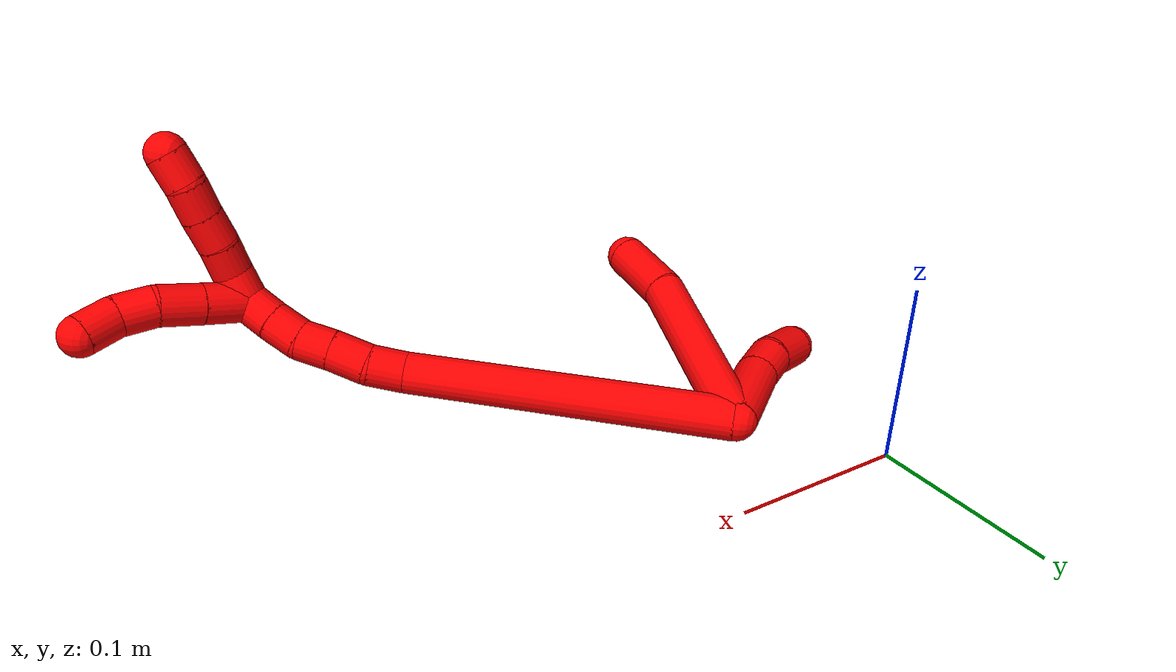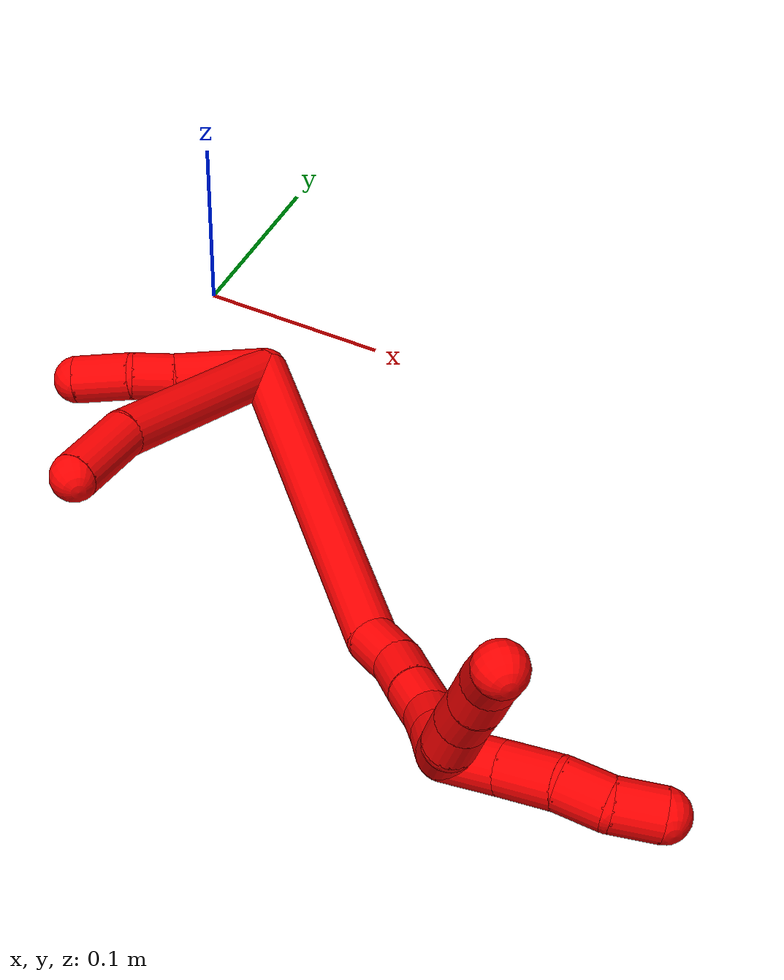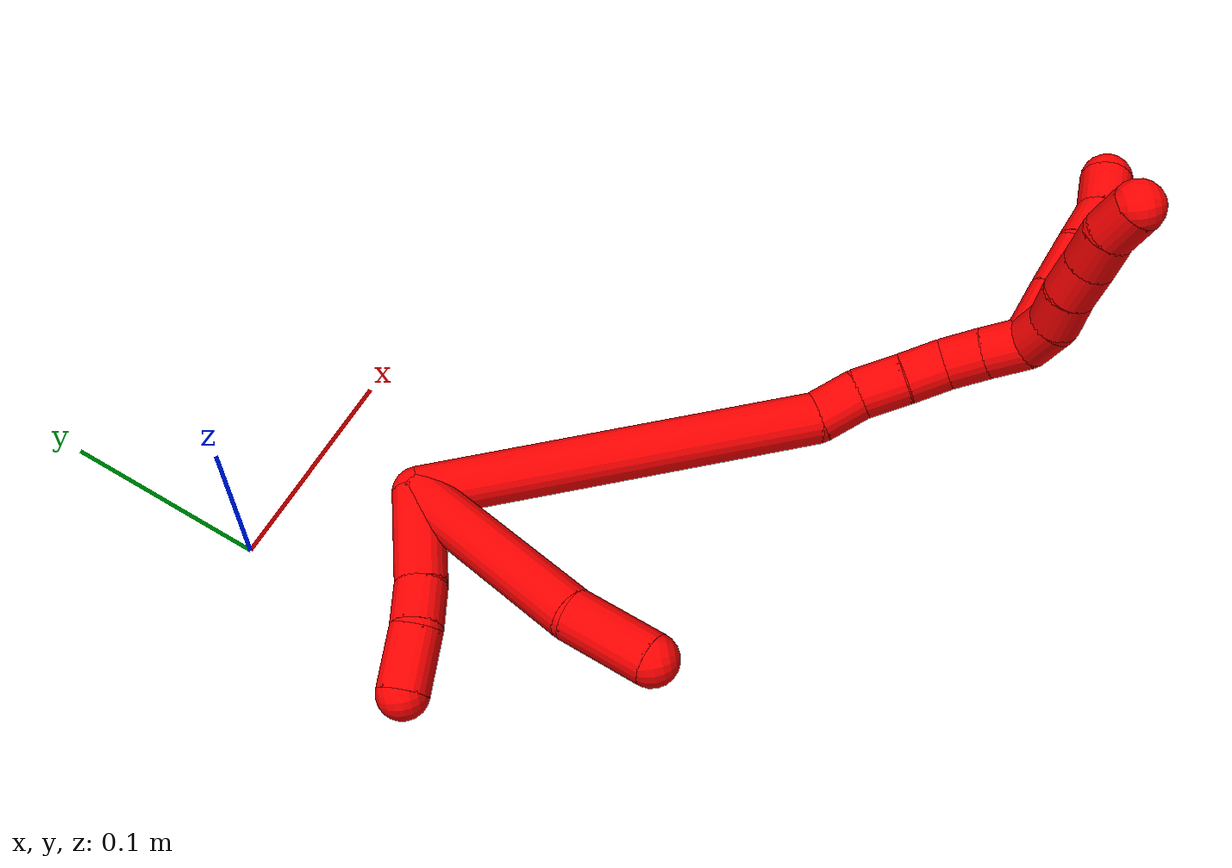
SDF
<sdf version="1.7">
 <world name="default">
  <model name="2">
   <static>0</static>
   <link name="2">
    <collision name="collision-cylinder-e_1_2_8">
     <pose>-0.024674 0.037066 0.03026 -0.886148 -0.476095 0.229283</pose>
     <geometry><cylinder><radius>0.0125</radius><length>0.107674</length></cylinder></geometry>
     <surface>
      <friction><ode><mu>1.16</mu><mu2>1.16</mu2><slip1>0</slip1><slip2>0</slip2></ode></friction>
      <contact><ode><kp>1e+06</kp><kd>1</kd><max_vel>0</max_vel><min_depth>0.001</min_depth></ode></contact>
     </surface>
    </collision>
    <visual name="visual-cylinder-e_1_2_8">
     <pose>-0.024674 0.037066 0.03026 -0.886148 -0.476095 0.229283</pose>
     <geometry><cylinder><radius>0.0125</radius><length>0.107674</length></cylinder></geometry>
     <material><ambient>1 0 0 1</ambient></material>
    </visual>
    <collision name="collision-cylinder-e_2_8_6">
     <pose>-0.059328 0.085069 0.075643 -0.626105 -0.491075 0.161878</pose>
     <geometry><cylinder><radius>0.0125</radius><length>0.042326</length></cylinder></geometry>
     <surface>
      <friction><ode><mu>1.16</mu><mu2>1.16</mu2><slip1>0</slip1><slip2>0</slip2></ode></friction>
      <contact><ode><kp>1e+06</kp><kd>1</kd><max_vel>0</max_vel><min_depth>0.001</min_depth></ode></contact>
     </surface>
    </collision>
    <visual name="visual-cylinder-e_2_8_6">
     <pose>-0.059328 0.085069 0.075643 -0.626105 -0.491075 0.161878</pose>
     <geometry><cylinder><radius>0.0125</radius><length>0.042326</length></cylinder></geometry>
     <material><ambient>1 0 0 1</ambient></material>
    </visual>
    <collision name="collision-cylinder-e_1_2_9">
     <pose>-0.017497 0.016267 -0.002569 -1.72741 -0.81567 0.936298</pose>
     <geometry><cylinder><radius>0.0125</radius><length>0.048056</length></cylinder></geometry>
     <surface>
      <friction><ode><mu>1.16</mu><mu2>1.16</mu2><slip1>0</slip1><slip2>0</slip2></ode></friction>
      <contact><ode><kp>1e+06</kp><kd>1</kd><max_vel>0</max_vel><min_depth>0.001</min_depth></ode></contact>
     </surface>
    </collision>
    <visual name="visual-cylinder-e_1_2_9">
     <pose>-0.017497 0.016267 -0.002569 -1.72741 -0.81567 0.936298</pose>
     <geometry><cylinder><radius>0.0125</radius><length>0.048056</length></cylinder></geometry>
     <material><ambient>1 0 0 1</ambient></material>
    </visual>
    <collision name="collision-cylinder-e_2_9_10">
     <pose>-0.042562 0.039907 -0.007619 -1.89542 -0.771613 1.02892</pose>
     <geometry><cylinder><radius>0.0125</radius><length>0.021707</length></cylinder></geometry>
     <surface>
      <friction><ode><mu>1.16</mu><mu2>1.16</mu2><slip1>0</slip1><slip2>0</slip2></ode></friction>
      <contact><ode><kp>1e+06</kp><kd>1</kd><max_vel>0</max_vel><min_depth>0.001</min_depth></ode></contact>
     </surface>
    </collision>
    <visual name="visual-cylinder-e_2_9_10">
     <pose>-0.042562 0.039907 -0.007619 -1.89542 -0.771613 1.02892</pose>
     <geometry><cylinder><radius>0.0125</radius><length>0.021707</length></cylinder></geometry>
     <material><ambient>1 0 0 1</ambient></material>
    </visual>
    <collision name="collision-cylinder-e_3_10_5">
     <pose>-0.062295 0.054394 -0.015575 -2.22672 -0.935086 1.5961</pose>
     <geometry><cylinder><radius>0.0125</radius><length>0.030237</length></cylinder></geometry>
     <surface>
      <friction><ode><mu>1.16</mu><mu2>1.16</mu2><slip1>0</slip1><slip2>0</slip2></ode></friction>
      <contact><ode><kp>1e+06</kp><kd>1</kd><max_vel>0</max_vel><min_depth>0.001</min_depth></ode></contact>
     </surface>
    </collision>
    <visual name="visual-cylinder-e_3_10_5">
     <pose>-0.062295 0.054394 -0.015575 -2.22672 -0.935086 1.5961</pose>
     <geometry><cylinder><radius>0.0125</radius><length>0.030237</length></cylinder></geometry>
     <material><ambient>1 0 0 1</ambient></material>
    </visual>
    <collision name="collision-cylinder-e_1_2_11">
     <pose>-0.002708 -0.007805 0.096281 0.080889 -0.028029 -0.001134</pose>
     <geometry><cylinder><radius>0.0125</radius><length>0.19327</length></cylinder></geometry>
     <surface>
      <friction><ode><mu>1.16</mu><mu2>1.16</mu2><slip1>0</slip1><slip2>0</slip2></ode></friction>
      <contact><ode><kp>1e+06</kp><kd>1</kd><max_vel>0</max_vel><min_depth>0.001</min_depth></ode></contact>
     </surface>
    </collision>
    <visual name="visual-cylinder-e_1_2_11">
     <pose>-0.002708 -0.007805 0.096281 0.080889 -0.028029 -0.001134</pose>
     <geometry><cylinder><radius>0.0125</radius><length>0.19327</length></cylinder></geometry>
     <material><ambient>1 0 0 1</ambient></material>
    </visual>
    <collision name="collision-cylinder-e_2_11_12">
     <pose>-0.00189 -0.0163 0.203449 0.063229 0.312665 0.009969</pose>
     <geometry><cylinder><radius>0.0125</radius><length>0.02293</length></cylinder></geometry>
     <surface>
      <friction><ode><mu>1.16</mu><mu2>1.16</mu2><slip1>0</slip1><slip2>0</slip2></ode></friction>
      <contact><ode><kp>1e+06</kp><kd>1</kd><max_vel>0</max_vel><min_depth>0.001</min_depth></ode></contact>
     </surface>
    </collision>
    <visual name="visual-cylinder-e_2_11_12">
     <pose>-0.00189 -0.0163 0.203449 0.063229 0.312665 0.009969</pose>
     <geometry><cylinder><radius>0.0125</radius><length>0.02293</length></cylinder></geometry>
     <material><ambient>1 0 0 1</ambient></material>
    </visual>
    <collision name="collision-cylinder-e_3_12_13">
     <pose>0.003575 -0.01538 0.225676 -0.140962 0.167694 -0.011867</pose>
     <geometry><cylinder><radius>0.0125</radius><length>0.023231</length></cylinder></geometry>
     <surface>
      <friction><ode><mu>1.16</mu><mu2>1.16</mu2><slip1>0</slip1><slip2>0</slip2></ode></friction>
      <contact><ode><kp>1e+06</kp><kd>1</kd><max_vel>0</max_vel><min_depth>0.001</min_depth></ode></contact>
     </surface>
    </collision>
    <visual name="visual-cylinder-e_3_12_13">
     <pose>0.003575 -0.01538 0.225676 -0.140962 0.167694 -0.011867</pose>
     <geometry><cylinder><radius>0.0125</radius><length>0.023231</length></cylinder></geometry>
     <material><ambient>1 0 0 1</ambient></material>
    </visual>
    <collision name="collision-cylinder-e_4_13_14">
     <pose>0.007291 -0.013064 0.246989 -0.070772 0.175816 -0.00624</pose>
     <geometry><cylinder><radius>0.0125</radius><length>0.020312</length></cylinder></geometry>
     <surface>
      <friction><ode><mu>1.16</mu><mu2>1.16</mu2><slip1>0</slip1><slip2>0</slip2></ode></friction>
      <contact><ode><kp>1e+06</kp><kd>1</kd><max_vel>0</max_vel><min_depth>0.001</min_depth></ode></contact>
     </surface>
    </collision>
    <visual name="visual-cylinder-e_4_13_14">
     <pose>0.007291 -0.013064 0.246989 -0.070772 0.175816 -0.00624</pose>
     <geometry><cylinder><radius>0.0125</radius><length>0.020312</length></cylinder></geometry>
     <material><ambient>1 0 0 1</ambient></material>
    </visual>
    <collision name="collision-cylinder-e_5_14_15">
     <pose>0.010647 -0.008953 0.266272 -0.350584 0.158091 -0.028056</pose>
     <geometry><cylinder><radius>0.0125</radius><length>0.020072</length></cylinder></geometry>
     <surface>
      <friction><ode><mu>1.16</mu><mu2>1.16</mu2><slip1>0</slip1><slip2>0</slip2></ode></friction>
      <contact><ode><kp>1e+06</kp><kd>1</kd><max_vel>0</max_vel><min_depth>0.001</min_depth></ode></contact>
     </surface>
    </collision>
    <visual name="visual-cylinder-e_5_14_15">
     <pose>0.010647 -0.008953 0.266272 -0.350584 0.158091 -0.028056</pose>
     <geometry><cylinder><radius>0.0125</radius><length>0.020072</length></cylinder></geometry>
     <material><ambient>1 0 0 1</ambient></material>
    </visual>
    <collision name="collision-cylinder-e_6_15_1">
     <pose>0.013636 -0.001557 0.284742 -0.410887 0.140019 -0.029223</pose>
     <geometry><cylinder><radius>0.0125</radius><length>0.020185</length></cylinder></geometry>
     <surface>
      <friction><ode><mu>1.16</mu><mu2>1.16</mu2><slip1>0</slip1><slip2>0</slip2></ode></friction>
      <contact><ode><kp>1e+06</kp><kd>1</kd><max_vel>0</max_vel><min_depth>0.001</min_depth></ode></contact>
     </surface>
    </collision>
    <visual name="visual-cylinder-e_6_15_1">
     <pose>0.013636 -0.001557 0.284742 -0.410887 0.140019 -0.029223</pose>
     <geometry><cylinder><radius>0.0125</radius><length>0.020185</length></cylinder></geometry>
     <material><ambient>1 0 0 1</ambient></material>
    </visual>
    <collision name="collision-cylinder-e_1_1_16">
     <pose>0.024348 -0.002568 0.303143 0.496269 0.724777 0.191523</pose>
     <geometry><cylinder><radius>0.0125</radius><length>0.028068</length></cylinder></geometry>
     <surface>
      <friction><ode><mu>1.16</mu><mu2>1.16</mu2><slip1>0</slip1><slip2>0</slip2></ode></friction>
      <contact><ode><kp>1e+06</kp><kd>1</kd><max_vel>0</max_vel><min_depth>0.001</min_depth></ode></contact>
     </surface>
    </collision>
    <visual name="visual-cylinder-e_1_1_16">
     <pose>0.024348 -0.002568 0.303143 0.496269 0.724777 0.191523</pose>
     <geometry><cylinder><radius>0.0125</radius><length>0.028068</length></cylinder></geometry>
     <material><ambient>1 0 0 1</ambient></material>
    </visual>
    <collision name="collision-cylinder-e_2_16_17">
     <pose>0.042316 -0.012128 0.321345 0.470387 0.7112 0.177523</pose>
     <geometry><cylinder><radius>0.0125</radius><length>0.026546</length></cylinder></geometry>
     <surface>
      <friction><ode><mu>1.16</mu><mu2>1.16</mu2><slip1>0</slip1><slip2>0</slip2></ode></friction>
      <contact><ode><kp>1e+06</kp><kd>1</kd><max_vel>0</max_vel><min_depth>0.001</min_depth></ode></contact>
     </surface>
    </collision>
    <visual name="visual-cylinder-e_2_16_17">
     <pose>0.042316 -0.012128 0.321345 0.470387 0.7112 0.177523</pose>
     <geometry><cylinder><radius>0.0125</radius><length>0.026546</length></cylinder></geometry>
     <material><ambient>1 0 0 1</ambient></material>
    </visual>
    <collision name="collision-cylinder-e_3_17_18">
     <pose>0.056785 -0.022742 0.337771 0.681763 0.543351 0.196989</pose>
     <geometry><cylinder><radius>0.0125</radius><length>0.022457</length></cylinder></geometry>
     <surface>
      <friction><ode><mu>1.16</mu><mu2>1.16</mu2><slip1>0</slip1><slip2>0</slip2></ode></friction>
      <contact><ode><kp>1e+06</kp><kd>1</kd><max_vel>0</max_vel><min_depth>0.001</min_depth></ode></contact>
     </surface>
    </collision>
    <visual name="visual-cylinder-e_3_17_18">
     <pose>0.056785 -0.022742 0.337771 0.681763 0.543351 0.196989</pose>
     <geometry><cylinder><radius>0.0125</radius><length>0.022457</length></cylinder></geometry>
     <material><ambient>1 0 0 1</ambient></material>
    </visual>
    <collision name="collision-cylinder-e_4_18_4">
     <pose>0.069465 -0.036878 0.349581 1.07718 0.643091 0.392935</pose>
     <geometry><cylinder><radius>0.0125</radius><length>0.022929</length></cylinder></geometry>
     <surface>
      <friction><ode><mu>1.16</mu><mu2>1.16</mu2><slip1>0</slip1><slip2>0</slip2></ode></friction>
      <contact><ode><kp>1e+06</kp><kd>1</kd><max_vel>0</max_vel><min_depth>0.001</min_depth></ode></contact>
     </surface>
    </collision>
    <visual name="visual-cylinder-e_4_18_4">
     <pose>0.069465 -0.036878 0.349581 1.07718 0.643091 0.392935</pose>
     <geometry><cylinder><radius>0.0125</radius><length>0.022929</length></cylinder></geometry>
     <material><ambient>1 0 0 1</ambient></material>
    </visual>
    <collision name="collision-cylinder-e_1_1_19">
     <pose>0.020199 0.009362 0.298946 -0.941581 0.541641 -0.280758</pose>
     <geometry><cylinder><radius>0.0125</radius><length>0.02</length></cylinder></geometry>
     <surface>
      <friction><ode><mu>1.16</mu><mu2>1.16</mu2><slip1>0</slip1><slip2>0</slip2></ode></friction>
      <contact><ode><kp>1e+06</kp><kd>1</kd><max_vel>0</max_vel><min_depth>0.001</min_depth></ode></contact>
     </surface>
    </collision>
    <visual name="visual-cylinder-e_1_1_19">
     <pose>0.020199 0.009362 0.298946 -0.941581 0.541641 -0.280758</pose>
     <geometry><cylinder><radius>0.0125</radius><length>0.02</length></cylinder></geometry>
     <material><ambient>1 0 0 1</ambient></material>
    </visual>
    <collision name="collision-cylinder-e_2_19_20">
     <pose>0.032768 0.022369 0.306834 -1.13304 0.835017 -0.550007</pose>
     <geometry><cylinder><radius>0.0125</radius><length>0.02</length></cylinder></geometry>
     <surface>
      <friction><ode><mu>1.16</mu><mu2>1.16</mu2><slip1>0</slip1><slip2>0</slip2></ode></friction>
      <contact><ode><kp>1e+06</kp><kd>1</kd><max_vel>0</max_vel><min_depth>0.001</min_depth></ode></contact>
     </surface>
    </collision>
    <visual name="visual-cylinder-e_2_19_20">
     <pose>0.032768 0.022369 0.306834 -1.13304 0.835017 -0.550007</pose>
     <geometry><cylinder><radius>0.0125</radius><length>0.02</length></cylinder></geometry>
     <material><ambient>1 0 0 1</ambient></material>
    </visual>
    <collision name="collision-cylinder-e_3_20_21">
     <pose>0.047177 0.0344 0.313631 -0.984768 0.774824 -0.430985</pose>
     <geometry><cylinder><radius>0.0125</radius><length>0.02</length></cylinder></geometry>
     <surface>
      <friction><ode><mu>1.16</mu><mu2>1.16</mu2><slip1>0</slip1><slip2>0</slip2></ode></friction>
      <contact><ode><kp>1e+06</kp><kd>1</kd><max_vel>0</max_vel><min_depth>0.001</min_depth></ode></contact>
     </surface>
    </collision>
    <visual name="visual-cylinder-e_3_20_21">
     <pose>0.047177 0.0344 0.313631 -0.984768 0.774824 -0.430985</pose>
     <geometry><cylinder><radius>0.0125</radius><length>0.02</length></cylinder></geometry>
     <material><ambient>1 0 0 1</ambient></material>
    </visual>
    <collision name="collision-cylinder-e_4_21_22">
     <pose>0.061229 0.046558 0.321007 -1.06658 0.783256 -0.478245</pose>
     <geometry><cylinder><radius>0.0125</radius><length>0.02</length></cylinder></geometry>
     <surface>
      <friction><ode><mu>1.16</mu><mu2>1.16</mu2><slip1>0</slip1><slip2>0</slip2></ode></friction>
      <contact><ode><kp>1e+06</kp><kd>1</kd><max_vel>0</max_vel><min_depth>0.001</min_depth></ode></contact>
     </surface>
    </collision>
    <visual name="visual-cylinder-e_4_21_22">
     <pose>0.061229 0.046558 0.321007 -1.06658 0.783256 -0.478245</pose>
     <geometry><cylinder><radius>0.0125</radius><length>0.02</length></cylinder></geometry>
     <material><ambient>1 0 0 1</ambient></material>
    </visual>
    <collision name="collision-cylinder-e_5_22_3">
     <pose>0.073961 0.059104 0.32968 -0.879323 0.603647 -0.290817</pose>
     <geometry><cylinder><radius>0.0125</radius><length>0.02</length></cylinder></geometry>
     <surface>
      <friction><ode><mu>1.16</mu><mu2>1.16</mu2><slip1>0</slip1><slip2>0</slip2></ode></friction>
      <contact><ode><kp>1e+06</kp><kd>1</kd><max_vel>0</max_vel><min_depth>0.001</min_depth></ode></contact>
     </surface>
    </collision>
    <visual name="visual-cylinder-e_5_22_3">
     <pose>0.073961 0.059104 0.32968 -0.879323 0.603647 -0.290817</pose>
     <geometry><cylinder><radius>0.0125</radius><length>0.02</length></cylinder></geometry>
     <material><ambient>1 0 0 1</ambient></material>
    </visual>
    <collision name="collision-sphere-3">
     <pose>0.079638 0.065446 0.33493 0 -0 0</pose>
     <geometry><sphere><radius>0.0125</radius></sphere></geometry>
     <surface>
      <friction><ode><mu>1.16</mu><mu2>1.16</mu2><slip1>0</slip1><slip2>0</slip2></ode></friction>
      <contact><ode><kp>1e+06</kp><kd>1</kd><max_vel>0</max_vel><min_depth>0.001</min_depth></ode></contact>
     </surface>
    </collision>
    <visual name="visual-sphere-3">
     <pose>0.079638 0.065446 0.33493 0 -0 0</pose>
     <geometry><sphere><radius>0.0125</radius></sphere></geometry>
     <material><ambient>1 0 0 1</ambient></material>
    </visual>
    <collision name="collision-sphere-22">
     <pose>0.068285 0.052762 0.32443 0 -0 0</pose>
     <geometry><sphere><radius>0.0125</radius></sphere></geometry>
     <surface>
      <friction><ode><mu>1.16</mu><mu2>1.16</mu2><slip1>0</slip1><slip2>0</slip2></ode></friction>
      <contact><ode><kp>1e+06</kp><kd>1</kd><max_vel>0</max_vel><min_depth>0.001</min_depth></ode></contact>
     </surface>
    </collision>
    <visual name="visual-sphere-22">
     <pose>0.068285 0.052762 0.32443 0 -0 0</pose>
     <geometry><sphere><radius>0.0125</radius></sphere></geometry>
     <material><ambient>1 0 0 1</ambient></material>
    </visual>
    <collision name="collision-sphere-21">
     <pose>0.054173 0.040354 0.317583 0 -0 0</pose>
     <geometry><sphere><radius>0.0125</radius></sphere></geometry>
     <surface>
      <friction><ode><mu>1.16</mu><mu2>1.16</mu2><slip1>0</slip1><slip2>0</slip2></ode></friction>
      <contact><ode><kp>1e+06</kp><kd>1</kd><max_vel>0</max_vel><min_depth>0.001</min_depth></ode></contact>
     </surface>
    </collision>
    <visual name="visual-sphere-21">
     <pose>0.054173 0.040354 0.317583 0 -0 0</pose>
     <geometry><sphere><radius>0.0125</radius></sphere></geometry>
     <material><ambient>1 0 0 1</ambient></material>
    </visual>
    <collision name="collision-sphere-20">
     <pose>0.040181 0.028447 0.309679 0 -0 0</pose>
     <geometry><sphere><radius>0.0125</radius></sphere></geometry>
     <surface>
      <friction><ode><mu>1.16</mu><mu2>1.16</mu2><slip1>0</slip1><slip2>0</slip2></ode></friction>
      <contact><ode><kp>1e+06</kp><kd>1</kd><max_vel>0</max_vel><min_depth>0.001</min_depth></ode></contact>
     </surface>
    </collision>
    <visual name="visual-sphere-20">
     <pose>0.040181 0.028447 0.309679 0 -0 0</pose>
     <geometry><sphere><radius>0.0125</radius></sphere></geometry>
     <material><ambient>1 0 0 1</ambient></material>
    </visual>
    <collision name="collision-sphere-19">
     <pose>0.025355 0.01629 0.303989 0 -0 0</pose>
     <geometry><sphere><radius>0.0125</radius></sphere></geometry>
     <surface>
      <friction><ode><mu>1.16</mu><mu2>1.16</mu2><slip1>0</slip1><slip2>0</slip2></ode></friction>
      <contact><ode><kp>1e+06</kp><kd>1</kd><max_vel>0</max_vel><min_depth>0.001</min_depth></ode></contact>
     </surface>
    </collision>
    <visual name="visual-sphere-19">
     <pose>0.025355 0.01629 0.303989 0 -0 0</pose>
     <geometry><sphere><radius>0.0125</radius></sphere></geometry>
     <material><ambient>1 0 0 1</ambient></material>
    </visual>
    <collision name="collision-sphere-5">
     <pose>-0.07446 0.061508 -0.02105 0 -0 0</pose>
     <geometry><sphere><radius>0.0125</radius></sphere></geometry>
     <surface>
      <friction><ode><mu>1.16</mu><mu2>1.16</mu2><slip1>0</slip1><slip2>0</slip2></ode></friction>
      <contact><ode><kp>1e+06</kp><kd>1</kd><max_vel>0</max_vel><min_depth>0.001</min_depth></ode></contact>
     </surface>
    </collision>
    <visual name="visual-sphere-5">
     <pose>-0.07446 0.061508 -0.02105 0 -0 0</pose>
     <geometry><sphere><radius>0.0125</radius></sphere></geometry>
     <material><ambient>1 0 0 1</ambient></material>
    </visual>
    <collision name="collision-sphere-10">
     <pose>-0.05013 0.04728 -0.0101 0 -0 0</pose>
     <geometry><sphere><radius>0.0125</radius></sphere></geometry>
     <surface>
      <friction><ode><mu>1.16</mu><mu2>1.16</mu2><slip1>0</slip1><slip2>0</slip2></ode></friction>
      <contact><ode><kp>1e+06</kp><kd>1</kd><max_vel>0</max_vel><min_depth>0.001</min_depth></ode></contact>
     </surface>
    </collision>
    <visual name="visual-sphere-10">
     <pose>-0.05013 0.04728 -0.0101 0 -0 0</pose>
     <geometry><sphere><radius>0.0125</radius></sphere></geometry>
     <material><ambient>1 0 0 1</ambient></material>
    </visual>
    <collision name="collision-sphere-6">
     <pose>-0.069308 0.096005 0.090765 0 -0 0</pose>
     <geometry><sphere><radius>0.0125</radius></sphere></geometry>
     <surface>
      <friction><ode><mu>1.16</mu><mu2>1.16</mu2><slip1>0</slip1><slip2>0</slip2></ode></friction>
      <contact><ode><kp>1e+06</kp><kd>1</kd><max_vel>0</max_vel><min_depth>0.001</min_depth></ode></contact>
     </surface>
    </collision>
    <visual name="visual-sphere-6">
     <pose>-0.069308 0.096005 0.090765 0 -0 0</pose>
     <geometry><sphere><radius>0.0125</radius></sphere></geometry>
     <material><ambient>1 0 0 1</ambient></material>
    </visual>
    <collision name="collision-sphere-9">
     <pose>-0.034994 0.032533 -0.005137 0 -0 0</pose>
     <geometry><sphere><radius>0.0125</radius></sphere></geometry>
     <surface>
      <friction><ode><mu>1.16</mu><mu2>1.16</mu2><slip1>0</slip1><slip2>0</slip2></ode></friction>
      <contact><ode><kp>1e+06</kp><kd>1</kd><max_vel>0</max_vel><min_depth>0.001</min_depth></ode></contact>
     </surface>
    </collision>
    <visual name="visual-sphere-9">
     <pose>-0.034994 0.032533 -0.005137 0 -0 0</pose>
     <geometry><sphere><radius>0.0125</radius></sphere></geometry>
     <material><ambient>1 0 0 1</ambient></material>
    </visual>
    <collision name="collision-sphere-2">
     <geometry><sphere><radius>0.0125</radius></sphere></geometry>
     <surface>
      <friction><ode><mu>1.16</mu><mu2>1.16</mu2><slip1>0</slip1><slip2>0</slip2></ode></friction>
      <contact><ode><kp>1e+06</kp><kd>1</kd><max_vel>0</max_vel><min_depth>0.001</min_depth></ode></contact>
     </surface>
    </collision>
    <visual name="visual-sphere-2">
     <geometry><sphere><radius>0.0125</radius></sphere></geometry>
     <material><ambient>1 0 0 1</ambient></material>
    </visual>
    <collision name="collision-sphere-8">
     <pose>-0.049348 0.074133 0.06052 0 -0 0</pose>
     <geometry><sphere><radius>0.0125</radius></sphere></geometry>
     <surface>
      <friction><ode><mu>1.16</mu><mu2>1.16</mu2><slip1>0</slip1><slip2>0</slip2></ode></friction>
      <contact><ode><kp>1e+06</kp><kd>1</kd><max_vel>0</max_vel><min_depth>0.001</min_depth></ode></contact>
     </surface>
    </collision>
    <visual name="visual-sphere-8">
     <pose>-0.049348 0.074133 0.06052 0 -0 0</pose>
     <geometry><sphere><radius>0.0125</radius></sphere></geometry>
     <material><ambient>1 0 0 1</ambient></material>
    </visual>
    <collision name="collision-sphere-11">
     <pose>-0.005416 -0.01561 0.192562 0 -0 0</pose>
     <geometry><sphere><radius>0.0125</radius></sphere></geometry>
     <surface>
      <friction><ode><mu>1.16</mu><mu2>1.16</mu2><slip1>0</slip1><slip2>0</slip2></ode></friction>
      <contact><ode><kp>1e+06</kp><kd>1</kd><max_vel>0</max_vel><min_depth>0.001</min_depth></ode></contact>
     </surface>
    </collision>
    <visual name="visual-sphere-11">
     <pose>-0.005416 -0.01561 0.192562 0 -0 0</pose>
     <geometry><sphere><radius>0.0125</radius></sphere></geometry>
     <material><ambient>1 0 0 1</ambient></material>
    </visual>
    <collision name="collision-sphere-12">
     <pose>0.001637 -0.016989 0.214337 0 -0 0</pose>
     <geometry><sphere><radius>0.0125</radius></sphere></geometry>
     <surface>
      <friction><ode><mu>1.16</mu><mu2>1.16</mu2><slip1>0</slip1><slip2>0</slip2></ode></friction>
      <contact><ode><kp>1e+06</kp><kd>1</kd><max_vel>0</max_vel><min_depth>0.001</min_depth></ode></contact>
     </surface>
    </collision>
    <visual name="visual-sphere-12">
     <pose>0.001637 -0.016989 0.214337 0 -0 0</pose>
     <geometry><sphere><radius>0.0125</radius></sphere></geometry>
     <material><ambient>1 0 0 1</ambient></material>
    </visual>
    <collision name="collision-sphere-13">
     <pose>0.005514 -0.013771 0.237015 0 -0 0</pose>
     <geometry><sphere><radius>0.0125</radius></sphere></geometry>
     <surface>
      <friction><ode><mu>1.16</mu><mu2>1.16</mu2><slip1>0</slip1><slip2>0</slip2></ode></friction>
      <contact><ode><kp>1e+06</kp><kd>1</kd><max_vel>0</max_vel><min_depth>0.001</min_depth></ode></contact>
     </surface>
    </collision>
    <visual name="visual-sphere-13">
     <pose>0.005514 -0.013771 0.237015 0 -0 0</pose>
     <geometry><sphere><radius>0.0125</radius></sphere></geometry>
     <material><ambient>1 0 0 1</ambient></material>
    </visual>
    <collision name="collision-sphere-14">
     <pose>0.009067 -0.012357 0.256964 0 -0 0</pose>
     <geometry><sphere><radius>0.0125</radius></sphere></geometry>
     <surface>
      <friction><ode><mu>1.16</mu><mu2>1.16</mu2><slip1>0</slip1><slip2>0</slip2></ode></friction>
      <contact><ode><kp>1e+06</kp><kd>1</kd><max_vel>0</max_vel><min_depth>0.001</min_depth></ode></contact>
     </surface>
    </collision>
    <visual name="visual-sphere-14">
     <pose>0.009067 -0.012357 0.256964 0 -0 0</pose>
     <geometry><sphere><radius>0.0125</radius></sphere></geometry>
     <material><ambient>1 0 0 1</ambient></material>
    </visual>
    <collision name="collision-sphere-15">
     <pose>0.012227 -0.005549 0.27558 0 -0 0</pose>
     <geometry><sphere><radius>0.0125</radius></sphere></geometry>
     <surface>
      <friction><ode><mu>1.16</mu><mu2>1.16</mu2><slip1>0</slip1><slip2>0</slip2></ode></friction>
      <contact><ode><kp>1e+06</kp><kd>1</kd><max_vel>0</max_vel><min_depth>0.001</min_depth></ode></contact>
     </surface>
    </collision>
    <visual name="visual-sphere-15">
     <pose>0.012227 -0.005549 0.27558 0 -0 0</pose>
     <geometry><sphere><radius>0.0125</radius></sphere></geometry>
     <material><ambient>1 0 0 1</ambient></material>
    </visual>
    <collision name="collision-sphere-1">
     <pose>0.015044 0.002434 0.293904 0 -0 0</pose>
     <geometry><sphere><radius>0.0125</radius></sphere></geometry>
     <surface>
      <friction><ode><mu>1.16</mu><mu2>1.16</mu2><slip1>0</slip1><slip2>0</slip2></ode></friction>
      <contact><ode><kp>1e+06</kp><kd>1</kd><max_vel>0</max_vel><min_depth>0.001</min_depth></ode></contact>
     </surface>
    </collision>
    <visual name="visual-sphere-1">
     <pose>0.015044 0.002434 0.293904 0 -0 0</pose>
     <geometry><sphere><radius>0.0125</radius></sphere></geometry>
     <material><ambient>1 0 0 1</ambient></material>
    </visual>
    <collision name="collision-sphere-18">
     <pose>0.062591 -0.028799 0.345234 0 -0 0</pose>
     <geometry><sphere><radius>0.0125</radius></sphere></geometry>
     <surface>
      <friction><ode><mu>1.16</mu><mu2>1.16</mu2><slip1>0</slip1><slip2>0</slip2></ode></friction>
      <contact><ode><kp>1e+06</kp><kd>1</kd><max_vel>0</max_vel><min_depth>0.001</min_depth></ode></contact>
     </surface>
    </collision>
    <visual name="visual-sphere-18">
     <pose>0.062591 -0.028799 0.345234 0 -0 0</pose>
     <geometry><sphere><radius>0.0125</radius></sphere></geometry>
     <material><ambient>1 0 0 1</ambient></material>
    </visual>
    <collision name="collision-sphere-16">
     <pose>0.033652 -0.007571 0.312382 0 -0 0</pose>
     <geometry><sphere><radius>0.0125</radius></sphere></geometry>
     <surface>
      <friction><ode><mu>1.16</mu><mu2>1.16</mu2><slip1>0</slip1><slip2>0</slip2></ode></friction>
      <contact><ode><kp>1e+06</kp><kd>1</kd><max_vel>0</max_vel><min_depth>0.001</min_depth></ode></contact>
     </surface>
    </collision>
    <visual name="visual-sphere-16">
     <pose>0.033652 -0.007571 0.312382 0 -0 0</pose>
     <geometry><sphere><radius>0.0125</radius></sphere></geometry>
     <material><ambient>1 0 0 1</ambient></material>
    </visual>
    <collision name="collision-sphere-17">
     <pose>0.05098 -0.016686 0.330309 0 -0 0</pose>
     <geometry><sphere><radius>0.0125</radius></sphere></geometry>
     <surface>
      <friction><ode><mu>1.16</mu><mu2>1.16</mu2><slip1>0</slip1><slip2>0</slip2></ode></friction>
      <contact><ode><kp>1e+06</kp><kd>1</kd><max_vel>0</max_vel><min_depth>0.001</min_depth></ode></contact>
     </surface>
    </collision>
    <visual name="visual-sphere-17">
     <pose>0.05098 -0.016686 0.330309 0 -0 0</pose>
     <geometry><sphere><radius>0.0125</radius></sphere></geometry>
     <material><ambient>1 0 0 1</ambient></material>
    </visual>
    <collision name="collision-sphere-4">
     <pose>0.07634 -0.044958 0.353928 0 -0 0</pose>
     <geometry><sphere><radius>0.0125</radius></sphere></geometry>
     <surface>
      <friction><ode><mu>1.16</mu><mu2>1.16</mu2><slip1>0</slip1><slip2>0</slip2></ode></friction>
      <contact><ode><kp>1e+06</kp><kd>1</kd><max_vel>0</max_vel><min_depth>0.001</min_depth></ode></contact>
     </surface>
    </collision>
    <visual name="visual-sphere-4">
     <pose>0.07634 -0.044958 0.353928 0 -0 0</pose>
     <geometry><sphere><radius>0.0125</radius></sphere></geometry>
     <material><ambient>1 0 0 1</ambient></material>
    </visual>
    <inertial>
     <pose>0.000958 0.013139 0.152489 0 -0 0</pose>
     <mass>0.75</mass>
     <inertia>
      <ixx>0.000766</ixx>
      <ixy>0</ixy>
      <ixz>0</ixz>
      <iyy>0.000763</iyy>
      <iyz>0</iyz>
      <izz>6.5e-05</izz>
     </inertia>
    </inertial>
   </link>
   <pose>0.061567 -0.054889 0.013212 1.47826 -0.690542 0.786439</pose>
  </model>
 </world>
</sdf>
